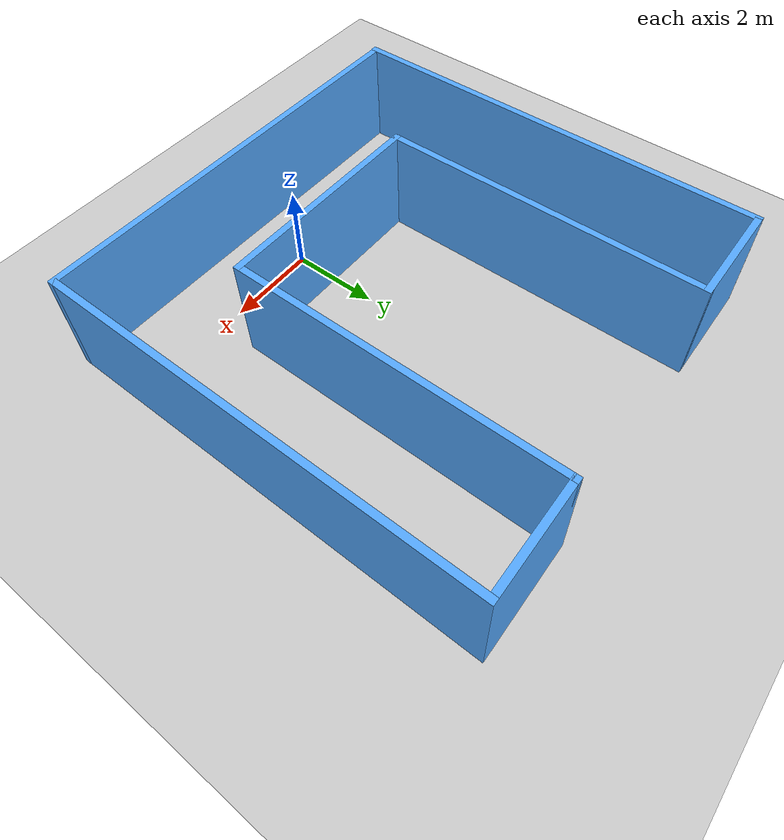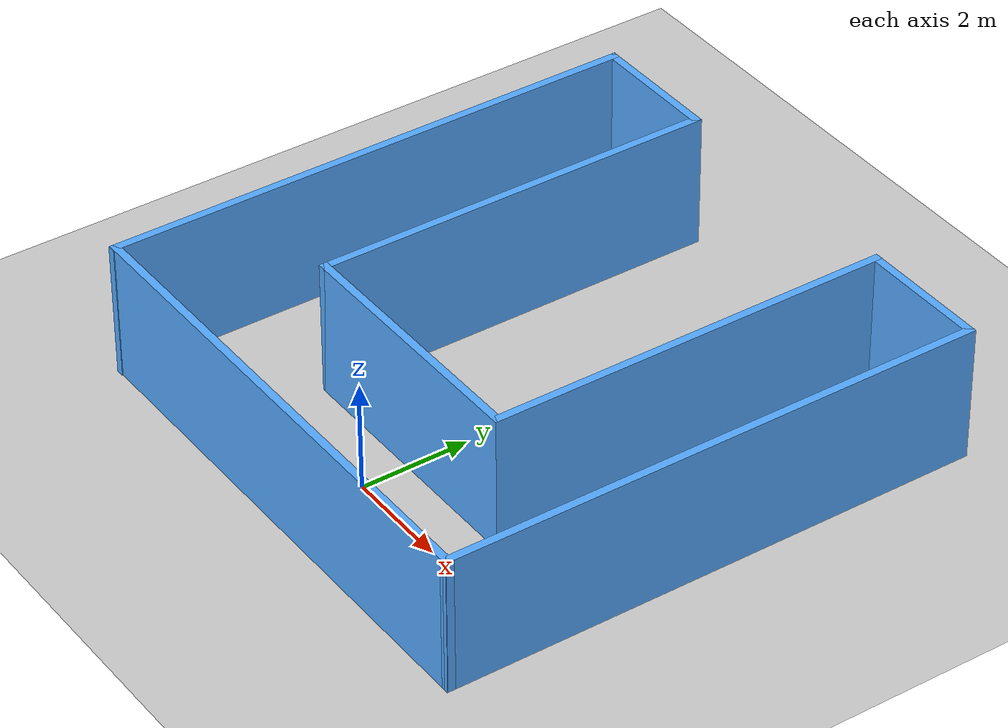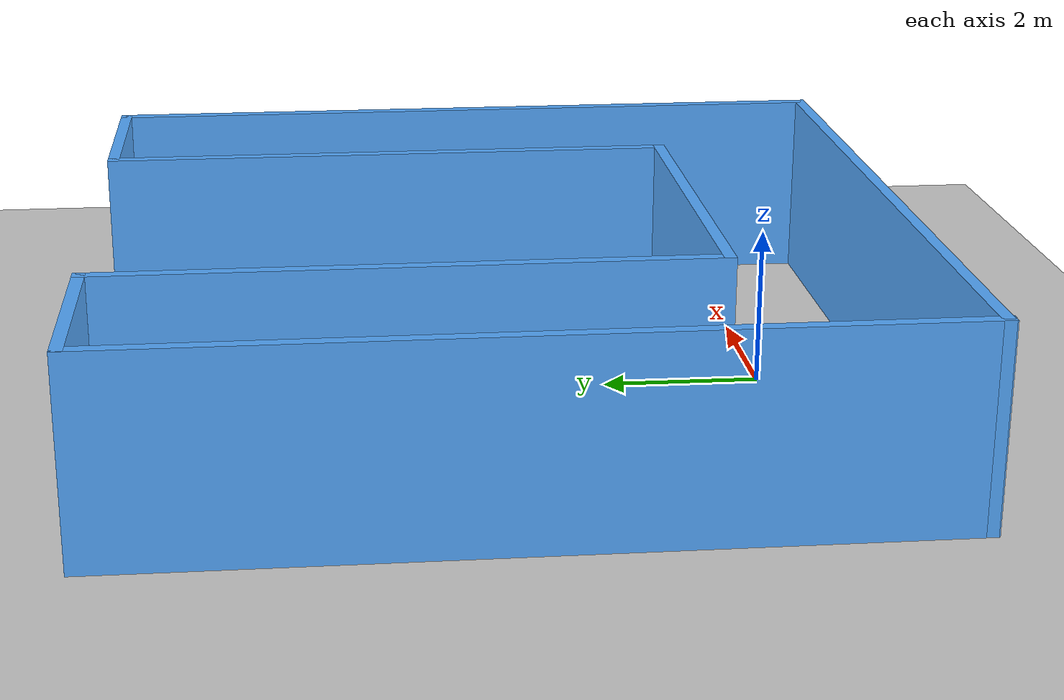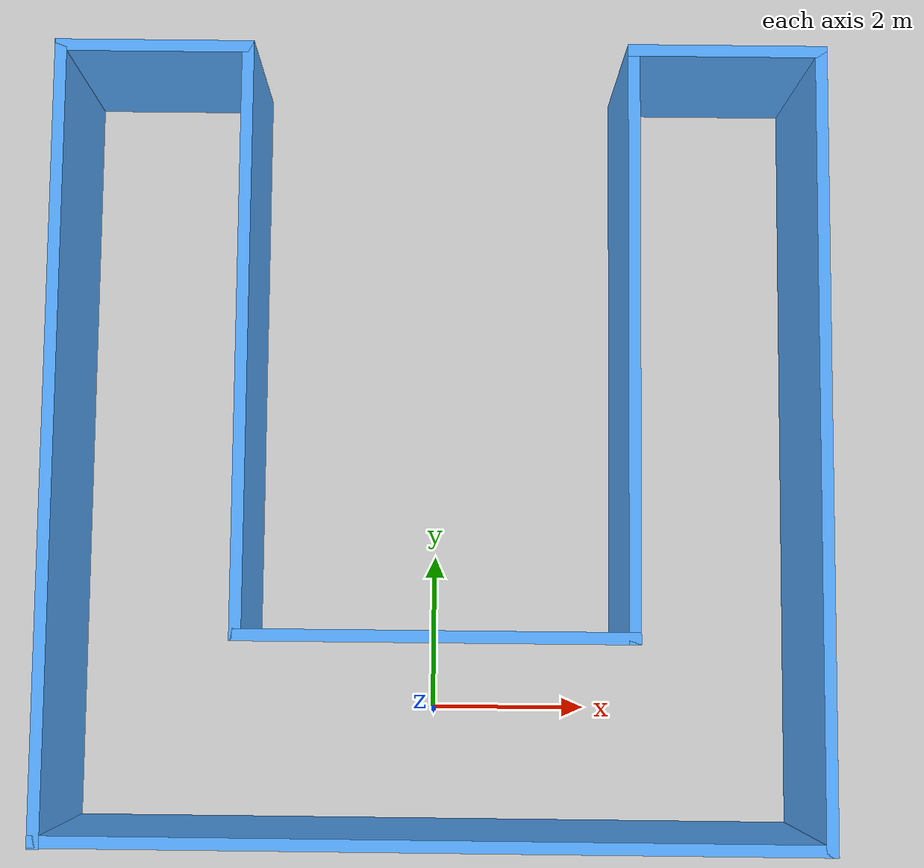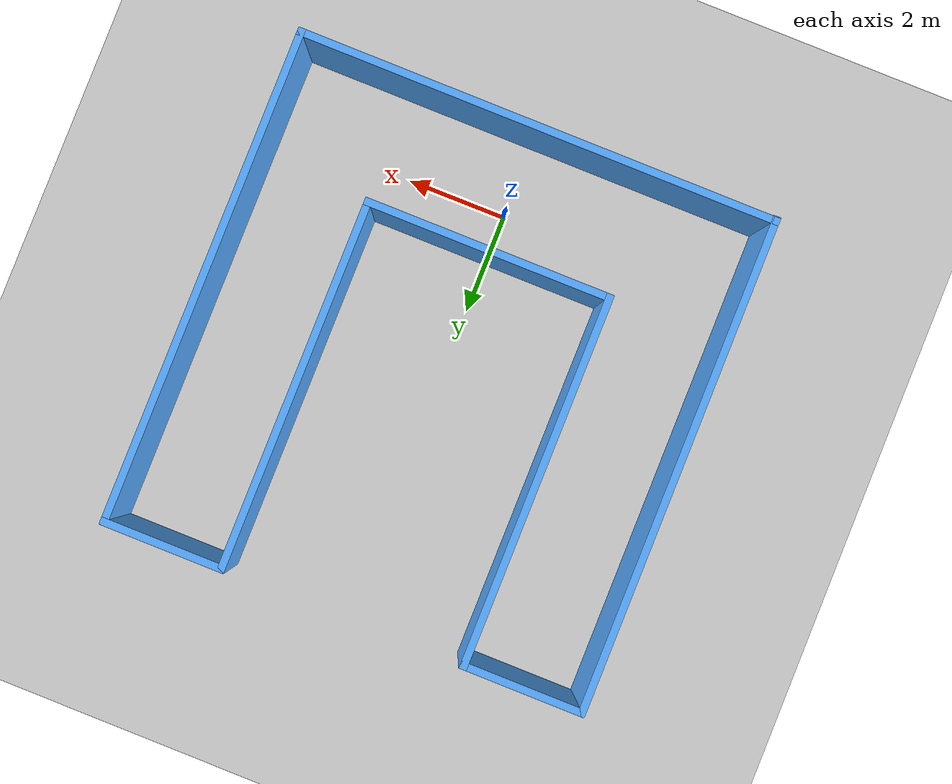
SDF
<sdf version="1.6">
 <world name="default">
  <light name="sun" type="directional">
   <pose>0 0 10 0 -0 0</pose>
   <diffuse>0.8 0.8 0.8 1</diffuse>
   <specular>0.2 0.2 0.2 1</specular>
   <attenuation>
    <range>1000</range>
    <constant>0.9</constant>
    <linear>0.01</linear>
    <quadratic>0.001</quadratic>
   </attenuation>
   <direction>-0.5 0.1 -0.9</direction>
  </light>
  <model name="ground_plane">
   <static>1</static>
   <link name="link">
    <collision name="collision">
     <geometry><plane><normal>0 0 1</normal><size>100 100</size></plane></geometry>
     <surface><friction><ode><mu>100</mu><mu2>50</mu2></ode></friction></surface>
    </collision>
    <visual name="visual">
     <cast_shadows>0</cast_shadows>
     <geometry><plane><normal>0 0 1</normal><size>100 100</size></plane></geometry>
     <material>
      <script><uri>file://media/materials/scripts/gazebo.material</uri><name>Gazebo/Grey</name></script>
     </material>
    </visual>
   </link>
  </model>
  <gravity>0 0 -9.8</gravity>
  <magnetic_field>6e-06 2.3e-05 -4.2e-05</magnetic_field>
  <atmosphere type="adiabatic"/>
  <physics name="default_physics" default="0" type="ode">
   <max_step_size>0.001</max_step_size>
   <real_time_factor>1</real_time_factor>
   <real_time_update_rate>1000</real_time_update_rate>
  </physics>
  <scene><ambient>0.4 0.4 0.4 1</ambient><background>0.7 0.7 0.7 1</background><shadows>1</shadows></scene>
  <spherical_coordinates>
   <surface_model>EARTH_WGS84</surface_model>
   <latitude_deg>0</latitude_deg>
   <longitude_deg>0</longitude_deg>
   <elevation>0</elevation>
   <heading_deg>0</heading_deg>
  </spherical_coordinates>
  <model name="building">
   <pose>0.005009 3.36028 0 0 -0 0</pose>
   <link name="Wall_53">
    <collision name="Wall_53_Collision">
     <geometry><box><size>2.5 0.15 2.5</size></box></geometry>
     <pose>0 0 1.25 0 -0 0</pose>
    </collision>
    <visual name="Wall_53_Visual">
     <pose>0 0 1.25 0 -0 0</pose>
     <geometry><box><size>2.5 0.15 2.5</size></box></geometry>
     <material>
      <script><uri>file://media/materials/scripts/gazebo.material</uri><name>Gazebo/Grey</name></script>
      <ambient>0.333333 0.666667 1 1</ambient>
     </material>
     <meta><layer>0</layer></meta>
    </visual>
    <pose>-3.59715 4.92506 0 0 -0 0</pose>
   </link>
   <link name="Wall_54">
    <collision name="Wall_54_Collision">
     <geometry><box><size>7.5 0.15 2.5</size></box></geometry>
     <pose>0 0 1.25 0 -0 0</pose>
    </collision>
    <visual name="Wall_54_Visual">
     <pose>0 0 1.25 0 -0 0</pose>
     <geometry><box><size>7.5 0.15 2.5</size></box></geometry>
     <material>
      <script><uri>file://media/materials/scripts/gazebo.material</uri><name>Gazebo/Grey</name></script>
      <ambient>0.333333 0.666667 1 1</ambient>
     </material>
     <meta><layer>0</layer></meta>
    </visual>
    <pose>-2.42215 1.25006 0 0 0 -1.5708</pose>
   </link>
   <link name="Wall_55">
    <collision name="Wall_55_Collision">
     <geometry><box><size>5 0.15 2.5</size></box></geometry>
     <pose>0 0 1.25 0 -0 0</pose>
    </collision>
    <visual name="Wall_55_Visual">
     <pose>0 0 1.25 0 -0 0</pose>
     <geometry><box><size>5 0.15 2.5</size></box></geometry>
     <material>
      <script><uri>file://media/materials/scripts/gazebo.material</uri><name>Gazebo/Grey</name></script>
      <ambient>0.333333 0.666667 1 1</ambient>
     </material>
     <meta><layer>0</layer></meta>
    </visual>
    <pose>0.002851 -2.42494 0 0 -0 0</pose>
   </link>
   <link name="Wall_56">
    <collision name="Wall_56_Collision">
     <geometry><box><size>7.5 0.15 2.5</size></box></geometry>
     <pose>0 0 1.25 0 -0 0</pose>
    </collision>
    <visual name="Wall_56_Visual">
     <pose>0 0 1.25 0 -0 0</pose>
     <geometry><box><size>7.5 0.15 2.5</size></box></geometry>
     <material>
      <script><uri>file://media/materials/scripts/gazebo.material</uri><name>Gazebo/Grey</name></script>
      <ambient>0.333333 0.666667 1 1</ambient>
     </material>
     <meta><layer>0</layer></meta>
    </visual>
    <pose>2.42785 1.25006 0 0 -0 1.5708</pose>
   </link>
   <link name="Wall_57">
    <collision name="Wall_57_Collision">
     <geometry><box><size>2.5 0.15 2.5</size></box></geometry>
     <pose>0 0 1.25 0 -0 0</pose>
    </collision>
    <visual name="Wall_57_Visual">
     <pose>0 0 1.25 0 -0 0</pose>
     <geometry><box><size>2.5 0.15 2.5</size></box></geometry>
     <material>
      <script><uri>file://media/materials/scripts/gazebo.material</uri><name>Gazebo/Grey</name></script>
      <ambient>0.333333 0.666667 1 1</ambient>
     </material>
     <meta><layer>0</layer></meta>
    </visual>
    <pose>3.60285 4.92506 0 0 -0 0</pose>
   </link>
   <link name="Wall_58">
    <collision name="Wall_58_Collision">
     <geometry><box><size>10 0.15 2.5</size></box></geometry>
     <pose>0 0 1.25 0 -0 0</pose>
    </collision>
    <visual name="Wall_58_Visual">
     <pose>0 0 1.25 0 -0 0</pose>
     <geometry><box><size>10 0.15 2.5</size></box></geometry>
     <material>
      <script><uri>file://media/materials/scripts/gazebo.material</uri><name>Gazebo/Grey</name></script>
      <ambient>0.333333 0.666667 1 1</ambient>
     </material>
     <meta><layer>0</layer></meta>
    </visual>
    <pose>4.77785 5.7e-05 0 0 0 -1.5708</pose>
   </link>
   <link name="Wall_59">
    <collision name="Wall_59_Collision">
     <geometry><box><size>9.70588 0.15 2.5</size></box></geometry>
     <pose>0 0 1.25 0 -0 0</pose>
    </collision>
    <visual name="Wall_59_Visual">
     <pose>0 0 1.25 0 -0 0</pose>
     <geometry><box><size>9.70588 0.15 2.5</size></box></geometry>
     <material>
      <script><uri>file://media/materials/scripts/gazebo.material</uri><name>Gazebo/Grey</name></script>
      <ambient>0.333333 0.666667 1 1</ambient>
     </material>
     <meta><layer>0</layer></meta>
    </visual>
    <pose>0 -4.91758 0 0 -0 3.14005</pose>
   </link>
   <link name="Wall_60">
    <collision name="Wall_60_Collision">
     <geometry><box><size>10 0.15 2.5</size></box></geometry>
     <pose>0 0 1.25 0 -0 0</pose>
    </collision>
    <visual name="Wall_60_Visual">
     <pose>0 0 1.25 0 -0 0</pose>
     <geometry><box><size>10 0.15 2.5</size></box></geometry>
     <material>
      <script><uri>file://media/materials/scripts/gazebo.material</uri><name>Gazebo/Grey</name></script>
      <ambient>0.333333 0.666667 1 1</ambient>
     </material>
     <meta><layer>0</layer></meta>
    </visual>
    <pose>-4.77785 5.7e-05 0 0 -0 1.5708</pose>
   </link>
   <static>1</static>
  </model>
 </world>
</sdf>
